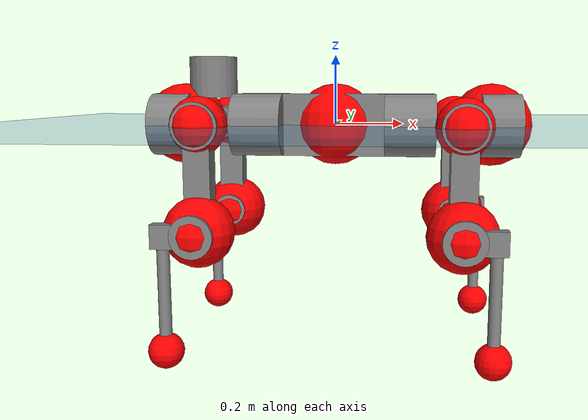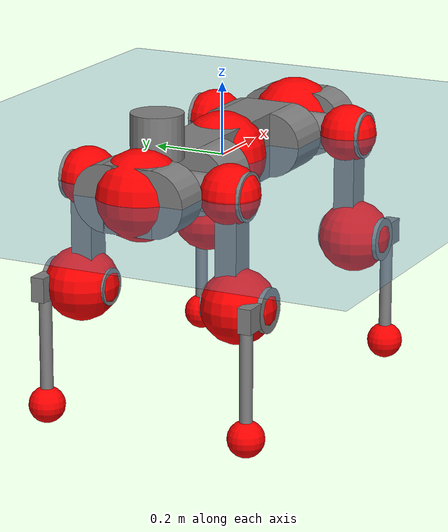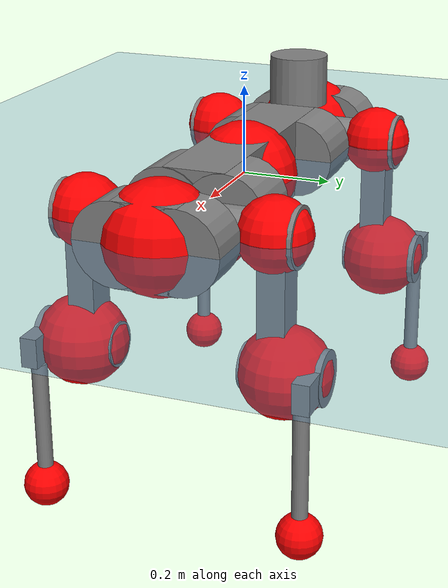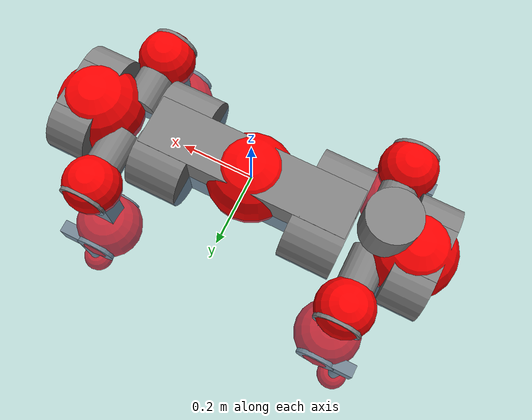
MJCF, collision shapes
<mujoco model="anymal_c">
  <compiler angle="radian" assetdir="assets" balanceinertia="true" inertiafromgeom="false"/>

  <option timestep="0.005" density="1.2" viscosity="2e-05"/>

  <size nkey="1"/>

  <visual>
    <quality shadowsize="8192"/>
    <map shadowclip="0.5"/>
  </visual>

  <default>
    <default class="/">
      <material specular="0" shininess="0.25"/>
      <geom contype="0" conaffinity="0" group="1" solref="-1000 -80"/>
      <site size="0.01 0.005 0.005" group="5"/>
      <general forcelimited="true" forcerange="-80 80" biastype="affine" gainprm="80" biasprm="0 -80 -2"/>
      <default class="anymal_c">
        <joint armature="0.01" damping="0.01" frictionloss="0.1"/>
        <default class="visual">
          <geom type="mesh" group="2"/>
          <default class="visual_zflip"/>
        </default>
        <default class="collision">
          <geom type="cylinder" group="3"/>
          <default class="foot">
            <geom size="0.03 0 0" type="sphere" condim="6" priority="1" friction="0.8 0.02 0.01" solimp="0.015 1 0.03"/>
          </default>
        </default>
      </default>
      <default class="reward_collision_sphere">
        <geom group="5" rgba="1 0 0 1"/>
      </default>
    </default>
  </default>

  <asset>
    <texture type="skybox" colorspace="auto" name="//unnamed_texture_0" builtin="gradient" rgb1="0.95 0.95 0.95" rgb2="0.95 0.95 0.95" width="100" height="600"/>
    <texture type="2d" colorspace="auto" name="texplane" builtin="checker" rgb1="0.345 0.575 0.748" rgb2="0.345 0.575 0.748" markrgb="1 1 1" width="512" height="512"/>
    <texture type="2d" colorspace="linear" name="base" file="base.png"/>
    <texture type="2d" colorspace="linear" name="top_shell" file="top_shell.png"/>
    <texture type="2d" colorspace="linear" name="bottom_shell" file="bottom_shell.png"/>
    <texture type="2d" colorspace="linear" name="remote" file="remote.png"/>
    <texture type="2d" colorspace="linear" name="hatch" file="hatch.png"/>
    <texture type="2d" colorspace="linear" name="handle" file="handle.png"/>
    <texture type="2d" colorspace="linear" name="face" file="face.png"/>
    <texture type="2d" colorspace="linear" name="battery" file="battery.png"/>
    <texture type="2d" colorspace="linear" name="lidar_cage" file="lidar_cage.png"/>
    <texture type="2d" colorspace="linear" name="depth_camera" file="depth_camera.png"/>
    <texture type="2d" colorspace="linear" name="wide_angle_camera" file="wide_angle_camera.png"/>
    <texture type="2d" colorspace="linear" name="lidar" file="lidar.png"/>
    <texture type="2d" colorspace="linear" name="drive" file="drive.png"/>
    <texture type="2d" colorspace="linear" name="hip_l" file="hip_l.png"/>
    <texture type="2d" colorspace="linear" name="shank_l" file="shank_l.png"/>
    <texture type="2d" colorspace="linear" name="foot" file="foot.png"/>
    <texture type="2d" colorspace="linear" name="thigh" file="thigh.png"/>
    <texture type="2d" colorspace="linear" name="shank_r" file="shank_r.png"/>
    <texture type="2d" colorspace="linear" name="hip_r" file="hip_r.png"/>
    <material name="MatPlane" class="/" texture="texplane" texuniform="true" texrepeat="2 2" specular="0.9" shininess="0.5"/>
    <material name="black_plastic" class="/" rgba="0.007 0.007 0.007 1"/>
    <material name="green" class="/" rgba="0.052 0.178 0.033 1"/>
    <material name="red" class="/" rgba="0.178 0.006 0.005 1"/>
    <material name="yellow" class="/" rgba="0.178 0.119 0.006 1"/>
    <material name="lwl" class="/" rgba="0.8 0.8 0.8 1"/>
    <material name="base" class="/" texture="base"/>
    <material name="top_shell" class="/" texture="top_shell"/>
    <material name="bottom_shell" class="/" texture="bottom_shell"/>
    <material name="hip_l" class="/" texture="hip_l"/>
    <material name="thigh" class="/" texture="thigh"/>
    <material name="shank_l" class="/" texture="shank_l"/>
    <material name="foot" class="/" texture="foot"/>
    <material name="hip_r" class="/" texture="hip_r"/>
    <material name="shank" class="/" texture="shank_r"/>
    <material name="hatch" class="/" texture="hatch"/>
    <material name="remote" class="/" texture="remote"/>
    <material name="handle" class="/" texture="handle"/>
    <material name="face" class="/" texture="face"/>
    <material name="depth_camera" class="/" texture="depth_camera"/>
    <material name="wide_angle_camera" class="/" texture="wide_angle_camera"/>
    <material name="battery" class="/" texture="battery"/>
    <material name="lidar_cage" class="/" texture="lidar_cage"/>
    <material name="lidar" class="/" texture="lidar"/>
    <material name="drive" class="/" texture="drive"/>
    <mesh name="base_0" class="/" file="base_0.obj"/>
    <mesh name="base_1" class="/" file="base_1.obj"/>
    <mesh name="base_2" class="/" file="base_2.obj"/>
    <mesh name="base_3" class="/" file="base_3.obj"/>
    <mesh name="base_4" class="/" file="base_4.obj"/>
    <mesh name="base_5" class="/" file="base_5.obj"/>
    <mesh name="top_shell" class="/" file="top_shell.obj"/>
    <mesh name="bottom_shell" class="/" file="bottom_shell.obj"/>
    <mesh name="remote" class="/" file="remote.obj"/>
    <mesh name="handle" class="/" file="handle.obj"/>
    <mesh name="face" class="/" file="face.obj"/>
    <mesh name="wide_angle_camera" class="/" file="wide_angle_camera.obj"/>
    <mesh name="depth_camera" class="/" file="depth_camera.obj"/>
    <mesh name="battery" class="/" file="battery.obj"/>
    <mesh name="lidar_cage" class="/" file="lidar_cage.obj"/>
    <mesh name="lidar" class="/" file="lidar.obj"/>
    <mesh name="drive" class="/" file="drive.obj"/>
    <mesh name="hip_l" class="/" file="hip_l.obj"/>
    <mesh name="thigh" class="/" file="thigh.obj"/>
    <mesh name="shank_l" class="/" file="shank_l.obj"/>
    <mesh name="foot" class="/" file="foot.obj"/>
    <mesh name="hip_r" class="/" file="hip_r.obj"/>
    <mesh name="hatch" class="/" file="hatch.obj"/>
    <mesh name="shank_r" class="/" file="shank_r.obj"/>
  </asset>

  <worldbody>
    <geom name="floor" class="/" size="100 100 0.125" type="plane" group="0" material="MatPlane"/>
    <light name="toplight_shadow" class="/" pos="0 0 5" dir="0.0990148 0.0990148 -0.990148" type="directional" ambient="0.04 0.04 0.04" diffuse="0.55 0.55 0.55" specular="0.12 0.12 0.12"/>
    <light name="toplight_fill" class="/" pos="0 0 5" dir="0.0990148 0.0990148 -0.990148" type="directional" castshadow="false" ambient="0.04 0.04 0.04" diffuse="0.3 0.3 0.3" specular="0.08 0.08 0.08"/>
    <body name="trunk" childclass="anymal_c" pos="0.000521855 0.000150692 -0.00190533" quat="1 0.00020572 0.000707533 -0.000278707">
      <inertial pos="0.00254903 0.000577622 0.0526158" quat="0.497934 0.499119 0.496839 0.506057" mass="19.782" diaginertia="0.711872 0.519864 0.263384"/>
      <joint name="//unnamed_joint_0" type="free" armature="0" damping="0" frictionloss="0"/>
      <geom name="//unnamed_geom_1" class="visual" material="green" mesh="base_0"/>
      <geom name="//unnamed_geom_2" class="visual" material="yellow" mesh="base_1"/>
      <geom name="//unnamed_geom_3" class="visual" material="red" mesh="base_2"/>
      <geom name="//unnamed_geom_4" class="visual" material="black_plastic" mesh="base_3"/>
      <geom name="//unnamed_geom_5" class="visual" material="lwl" mesh="base_4"/>
      <geom name="//unnamed_geom_6" class="visual" material="base" mesh="base_5"/>
      <geom name="trunk_1" class="collision" size="0.291162 0.0702805 0.0903607" type="box"/>
      <geom name="trunk_2" class="collision" size="0.0903607 0.0727905" pos="0.221415 0.0671702 0" quat="0.707107 0 0.707107 0"/>
      <geom name="trunk_3" class="collision" size="0.0903607 0.0727905" pos="-0.221415 0.0671702 0" quat="0.707107 0 0.707107 0"/>
      <geom name="trunk_4" class="collision" size="0.0903607 0.0727905" pos="0.221415 -0.0671702 0" quat="0.707107 0 0.707107 0"/>
      <geom name="trunk_5" class="collision" size="0.0903607 0.0727905" pos="-0.221415 -0.0671702 0" quat="0.707107 0 0.707107 0"/>
      <geom name="//unnamed_geom_12" class="visual" material="top_shell" mesh="top_shell"/>
      <geom name="//unnamed_geom_13" class="visual" material="bottom_shell" mesh="bottom_shell"/>
      <geom name="//unnamed_geom_14" class="visual" material="remote" mesh="remote"/>
      <geom name="//unnamed_geom_15" class="visual" material="handle" mesh="handle"/>
      <geom name="//unnamed_geom_16" class="visual" pos="0.42196 0 0" quat="1 0 0 0" material="face" mesh="face"/>
      <geom name="trunk_6" class="collision" size="0.0552204 0.0702805 0.0903607" pos="0.47795 0 0" type="box"/>
      <geom name="//unnamed_geom_18" class="collision" size="0.0903607 0.0552204" pos="0.47795 0.0671702 0" quat="0.707107 0 0.707107 0"/>
      <geom name="//unnamed_geom_19" class="collision" size="0.0903607 0.0552204" pos="0.47795 -0.0671702 0" quat="0.707107 0 0.707107 0"/>
      <geom name="//unnamed_geom_20" class="visual" pos="0.469959 0 -0.030331" quat="0.965926 0 0.258819 0" material="depth_camera" mesh="depth_camera"/>
      <geom name="//unnamed_geom_21" class="visual" pos="0.522233 0 0.0154857" material="wide_angle_camera" mesh="wide_angle_camera"/>
      <geom name="//unnamed_geom_22" class="visual_zflip" pos="-0.42196 0 0" quat="0 0 0 1" material="face" mesh="face"/>
      <geom name="trunk_7" class="collision" size="0.0552204 0.0702805 0.0903607" pos="-0.47795 0 0" quat="0 0 0 1" type="box"/>
      <geom name="//unnamed_geom_24" class="collision" size="0.0903607 0.0552204" pos="-0.47795 -0.0671702 0" quat="0 -0.707107 0 0.707107"/>
      <geom name="//unnamed_geom_25" class="collision" size="0.0903607 0.0552204" pos="-0.47795 0.0671702 0" quat="0 -0.707107 0 0.707107"/>
      <geom name="//unnamed_geom_26" class="visual" pos="-0.469959 0 -0.030331" quat="0 -0.258819 0 0.965926" material="depth_camera" mesh="depth_camera"/>
      <geom name="//unnamed_geom_27" class="visual_zflip" pos="-0.522233 0 0.0154857" quat="0 0 0 1" material="wide_angle_camera" mesh="wide_angle_camera"/>
      <geom name="//unnamed_geom_28" class="visual" material="battery" mesh="battery"/>
      <geom name="//unnamed_geom_29" class="visual" pos="0 0.0726031 0.0299257" quat="0.683013 -0.183013 0.183013 0.683013" material="depth_camera" mesh="depth_camera"/>
      <geom name="//unnamed_geom_30" class="visual" pos="0 -0.0726031 0.0299257" quat="0.683013 0.183013 0.183013 -0.683013" material="depth_camera" mesh="depth_camera"/>
      <geom name="//unnamed_geom_31" class="visual" pos="-0.370551 0 0.0760321" quat="1 0 0 0" material="lidar_cage" mesh="lidar_cage"/>
      <geom name="trunk_8" class="collision" size="0.0702805 0.0602404" pos="-0.370551 0 0.138099"/>
      <geom name="//unnamed_geom_33" class="visual" pos="-0.370551 -2.29532e-05 0.147099" quat="0.707107 0 0 -0.707107" material="lidar" mesh="lidar"/>
      <geom name="//unnamed_geom_34" class="visual" pos="0.305298 0.0998223 -1.29162e-09" quat="0.258819 0.965926 0 0" material="drive" mesh="drive"/>
      <geom name="//unnamed_geom_35" class="visual" pos="0.305298 -0.0998223 1.29162e-09" quat="0.258819 -0.965926 0 0" material="drive" mesh="drive"/>
      <geom name="//unnamed_geom_36" class="visual" pos="-0.305298 0.0998223 1.29162e-09" quat="0 0 0.965926 -0.258819" material="drive" mesh="drive"/>
      <geom name="//unnamed_geom_37" class="visual" pos="-0.305298 -0.0998223 -1.29162e-09" quat="0 0 -0.965926 -0.258819" material="drive" mesh="drive"/>
      <geom name="//unnamed_geom_38" class="visual" pos="0.118088 0 0.0755149" quat="1 0 0 0" material="hatch" mesh="hatch"/>
      <geom name="//unnamed_geom_39" class="reward_collision_sphere" size="0.120481"/>
      <geom name="//unnamed_geom_40" class="reward_collision_sphere" size="0.120481" pos="0.458099 0 0"/>
      <geom name="//unnamed_geom_41" class="reward_collision_sphere" size="0.120481" pos="-0.458099 0 0"/>
      <site name="imu" pos="0.253816 0.00517758 0.0451325" size="0.0100401"/>
      <camera name="track" pos="0 -1.91915 0" quat="0.707107 0.707107 0 0" mode="trackcom"/>
      <camera name="ego_camera" pos="0.458099 0 -0.041378" quat="-0.5 -0.5 0.5 0.5"/>
      <body name="LF_HIP" pos="0.30552 0.0991407 0.000549192" quat="0.258905 0.965903 7.895e-05 2.42461e-05">
        <inertial pos="0.0563635 -0.0145328 -0.0102791" quat="-0.12699 0.714567 -0.140294 0.673488" mass="2.84048" diaginertia="0.00647425 0.00406503 0.0039321"/>
        <joint name="LF_HAA" pos="0 0 0" axis="0.999997 -0.00120246 -0.00198475" range="-0.715199 0.473682" armature="0.0100174" damping="0.00901591" frictionloss="0.0964478"/>
        <geom name="//unnamed_geom_42" class="visual" pos="0 -7.59804e-05 1.24797e-05" quat="0.258819 -0.965926 0 0" material="hip_l" mesh="hip_l"/>
        <geom name="//unnamed_geom_43" class="visual" pos="0.0609781 -0.0731453 -0.0427843" quat="0.183013 -0.683013 0.683013 0.183013" material="drive" mesh="drive"/>
        <geom name="//unnamed_geom_44" class="collision" size="0.0502004 0.0702805" pos="0.0609781 -0.0114763 -0.00714288" quat="-0.353553 -0.612372 0.612372 -0.353553"/>
        <body name="LF_THIGH" pos="0.0607563 -0.0704495 -0.04258" quat="0.18309 -0.682961 0.683028 0.183068">
          <inertial pos="0.0314798 -0.000124671 -0.25409" quat="0.992925 -0.0060411 -0.0795772 0.0879228" mass="3.05399" diaginertia="0.032591 0.0239526 0.00484126"/>
          <joint name="LF_HFE" pos="0 0 0" axis="1 9.21976e-05 -0.000782247" stiffness="0.00419756" range="-3.13101 3.14006" armature="0.00994756" damping="0.00876535" frictionloss="0.100687"/>
          <geom name="//unnamed_geom_45" class="visual" pos="0.00116241 1.83168e-06 0" quat="0.707107 0 0 -0.707107" material="thigh" mesh="thigh"/>
          <geom name="//unnamed_geom_46" class="collision" size="0.0652605 0.0401603" pos="0.0407199 0 0" quat="0.5 0.5 -0.5 -0.5"/>
          <geom name="//unnamed_geom_47" class="collision" size="0.0376503 0.0301202 0.14188" pos="0.0305399 0 -0.146182" quat="0.707107 0 0 -0.707107" type="box"/>
          <geom name="//unnamed_geom_48" class="visual" pos="0.102105 0 -0.294818" quat="1 0 0 0" material="drive" mesh="drive"/>
          <geom name="//unnamed_geom_49" class="collision" size="0.0502004 0.0702805" pos="0.0308453 0 -0.294818" quat="0.707107 0 0.707107 0"/>
          <geom name="//unnamed_geom_50" class="reward_collision_sphere" size="0.0803206" pos="0.0254499 0 0"/>
          <body name="LF_SHANK" pos="0.101582 -0.0008294 -0.295059" quat="1 -3.3251e-05 4.26194e-06 -6.93713e-06">
            <inertial pos="0.00334938 -0.0604278 -0.0835785" quat="0.992935 -0.115886 -0.00100683 -0.0254894" mass="0.59652" diaginertia="0.0109314 0.00758151 0.00132708"/>
            <joint name="LF_KFE" pos="0 0 0" axis="0.999998 0.00153075 0.00111519" range="-3.18291 3.12732" armature="0.0101037" damping="0.00971323" frictionloss="0.110478"/>
            <geom name="//unnamed_geom_51" class="visual" pos="0.000379036 0.00202104 0" quat="0.707107 0 0 -0.707107" material="shank_l" mesh="shank_l"/>
            <geom name="LF_kfe_act" class="collision" size="0.0602404 0.0200801" pos="0.02036 0 0" quat="0.5 0.5 -0.5 -0.5"/>
            <geom name="//unnamed_geom_53" class="collision" size="0.0577294 0.0338852 0.0190761" pos="0.02036 -0.0551745 0" quat="0.5 0.5 -0.5 -0.5" type="box"/>
            <geom name="//unnamed_geom_54" class="visual" pos="0.0132848 -0.0837432 -0.349613" quat="0.382683 0 0 -0.92388" material="foot" mesh="foot"/>
            <geom name="LF_calf" class="collision" size="0.0175701 0.141818" pos="0.0132849 -0.0843945 -0.174807" quat="0.707107 0 0 -0.707107"/>
            <geom name="LF_foot" class="foot" size="0.0298824" pos="0.0132849 -0.0843945 -0.326338" quat="0.707107 0 0 -0.707107"/>
            <geom name="//unnamed_geom_57" class="reward_collision_sphere" size="0.100401" pos="-0.0508999 0 0"/>
            <geom name="//unnamed_geom_58" class="reward_collision_sphere" size="0.0502004" pos="0.0132849 -0.0843945 -0.326338"/>
            <site name="LF_foot" class="foot" pos="0.0132849 -0.0843945 -0.326338" quat="0.707107 0 0 -0.707107" size="0.0100401"/>
          </body>
        </body>
      </body>
      <body name="RF_HIP" pos="0.306579 -0.100776 0.000198237" quat="0.258645 -0.965972 -0.000826464 0.000433714">
        <inertial pos="0.0588078 0.0150623 -0.00878137" quat="0.126107 0.678251 0.125853 0.712905" mass="2.91084" diaginertia="0.00648503 0.00405791 0.00395806"/>
        <joint name="RF_HAA" pos="0 0 0" axis="0.999987 -0.00379355 0.00329558" range="-0.530837 0.737336" armature="0.00984665" damping="0.0135461" frictionloss="0.0991208"/>
        <geom name="//unnamed_geom_59" class="visual" pos="0 7.59797e-05 1.24797e-05" quat="0.258819 0.965926 0 0" material="hip_r" mesh="hip_r"/>
        <geom name="//unnamed_geom_60" class="visual" pos="0.0609781 0.0731453 -0.0427843" quat="0.183013 0.683013 0.683013 -0.183013" material="drive" mesh="drive"/>
        <geom name="//unnamed_geom_61" class="collision" size="0.0502004 0.0702805" pos="0.0609781 0.0114763 -0.00714288" quat="-0.353553 0.612372 0.612372 0.353553"/>
        <body name="RF_THIGH" pos="0.0608944 0.0699044 -0.0429864" quat="0.182936 0.683287 0.682854 -0.182656">
          <inertial pos="0.0323894 -0.00015872 -0.253437" quat="0.992876 -0.00420199 -0.0780683 0.0899211" mass="3.13175" diaginertia="0.0330739 0.0241415 0.00490466"/>
          <joint name="RF_HFE" pos="0 0 0" axis="1 0.000576182 0.000316191" stiffness="0.00648061" range="-3.14408 3.15135" armature="0.0105719" damping="0" frictionloss="0.0973371"/>
          <geom name="//unnamed_geom_62" class="visual" pos="0.00116241 1.83168e-06 0" quat="0.707107 0 0 -0.707107" material="thigh" mesh="thigh"/>
          <geom name="//unnamed_geom_63" class="collision" size="0.0652605 0.0401603" pos="0.0407199 0 0" quat="0.5 0.5 0.5 0.5"/>
          <geom name="//unnamed_geom_64" class="collision" size="0.0376503 0.0301202 0.14188" pos="0.0305399 0 -0.146182" quat="0.707107 0 0 0.707107" type="box"/>
          <geom name="//unnamed_geom_65" class="visual" pos="0.102105 0 -0.294818" quat="1 0 0 0" material="drive" mesh="drive"/>
          <geom name="//unnamed_geom_66" class="collision" size="0.0502004 0.0702805" pos="0.0308453 0 -0.294818" quat="0.707107 0 0.707107 0"/>
          <geom name="//unnamed_geom_67" class="reward_collision_sphere" size="0.0803206" pos="0.0254499 0 0"/>
          <body name="RF_SHANK" pos="0.100032 7.90663e-05 -0.294923" quat="1 -1.12306e-05 1.09407e-06 1.11236e-05">
            <inertial pos="0.00598773 0.0573857 -0.0825842" quat="0.993929 0.106989 -0.00637584 0.0248471" mass="0.581784" diaginertia="0.0108767 0.00748544 0.00130629"/>
            <joint name="RF_KFE" pos="0 0 0" axis="0.999994 0.00080588 -0.0035119" stiffness="0.00183027" range="-3.13966 3.12683" armature="0.00994695" damping="0.00406335" frictionloss="0.104893"/>
            <geom name="//unnamed_geom_68" class="visual" pos="0.000379034 -0.00202103 0" quat="0.707107 0 0 0.707107" material="shank" mesh="shank_r"/>
            <geom name="RF_kfe_act" class="collision" size="0.0602404 0.0200801" pos="0.02036 0 0" quat="0.5 0.5 0.5 0.5"/>
            <geom name="//unnamed_geom_70" class="collision" size="0.0577294 0.0338852 0.0190761" pos="0.02036 0.0551745 0" quat="0.5 0.5 0.5 0.5" type="box"/>
            <geom name="//unnamed_geom_71" class="visual" pos="0.013285 0.0837432 -0.349613" quat="0.382683 0 0 0.92388" material="foot" mesh="foot"/>
            <geom name="RF_calf" class="collision" size="0.0175701 0.141818" pos="0.0132849 0.0843945 -0.174807" quat="0.707107 0 0 0.707107"/>
            <geom name="RF_foot" class="foot" size="0.0291353" pos="0.0132849 0.0843945 -0.326338" quat="0.707107 0 0 0.707107"/>
            <geom name="//unnamed_geom_74" class="reward_collision_sphere" size="0.100401" pos="-0.0508999 0 0"/>
            <geom name="//unnamed_geom_75" class="reward_collision_sphere" size="0.0502004" pos="0.0132849 0.0843945 -0.326338"/>
            <site name="RF_foot" class="foot" pos="0.0132849 0.0843945 -0.326338" quat="0.707107 0 0 0.707107" size="0.0100401"/>
          </body>
        </body>
      </body>
      <body name="LH_HIP" pos="-0.305072 0.0999678 0.00104502" quat="9.06294e-05 4.67131e-05 0.966052 -0.258347">
        <inertial pos="0.0585385 0.0129814 -0.0106204" quat="0.131274 0.680051 0.125167 0.710374" mass="2.81553" diaginertia="0.00652571 0.00398162 0.00390241"/>
        <joint name="LH_HAA" pos="0 0 0" axis="0.999969 -0.00293317 0.007252" range="-0.518866 0.753597" armature="0.0105533" damping="0.0103221" frictionloss="0.099767"/>
        <geom name="//unnamed_geom_76" class="visual" pos="0 7.59797e-05 1.24797e-05" quat="-0.258819 -0.965926 0 0" material="hip_r" mesh="hip_r"/>
        <geom name="//unnamed_geom_77" class="visual" pos="0.0609781 0.0731453 -0.0427843" quat="0.183013 0.683013 0.683013 -0.183013" material="drive" mesh="drive"/>
        <geom name="//unnamed_geom_78" class="collision" size="0.0502004 0.0702805" pos="0.0609781 0.0114763 -0.00714288" quat="-0.353553 0.612372 0.612372 0.353553"/>
        <body name="LH_THIGH" pos="0.0607806 0.0686639 -0.0415394" quat="0.182797 0.682851 0.6832 -0.183136">
          <inertial pos="0.0335433 -0.000409934 -0.255972" quat="0.992808 -0.00518367 -0.0805208 0.0884445" mass="3.19173" diaginertia="0.0346496 0.0251247 0.00509063"/>
          <joint name="LH_HFE" pos="0 0 0" axis="0.999948 0.00270856 -0.00985691" range="-3.13827 3.1391" armature="0.0100393" damping="0" frictionloss="0.0955523"/>
          <geom name="//unnamed_geom_79" class="visual" pos="0.00116241 1.83168e-06 0" quat="0.707107 0 0 -0.707107" material="thigh" mesh="thigh"/>
          <geom name="//unnamed_geom_80" class="collision" size="0.0652605 0.0401603" pos="0.0407199 0 0" quat="0.5 0.5 -0.5 -0.5"/>
          <geom name="//unnamed_geom_81" class="collision" size="0.0376503 0.0301202 0.14188" pos="0.0305399 0 -0.146182" quat="0.707107 0 0 -0.707107" type="box"/>
          <geom name="//unnamed_geom_82" class="visual" pos="0.102105 0 -0.294818" quat="1 0 0 0" material="drive" mesh="drive"/>
          <geom name="//unnamed_geom_83" class="collision" size="0.0502004 0.0702805" pos="0.0308453 0 -0.294818" quat="0.707107 0 0.707107 0"/>
          <geom name="//unnamed_geom_84" class="reward_collision_sphere" size="0.0803206" pos="0.0254499 0 0"/>
          <body name="LH_SHANK" pos="0.102386 5.08868e-05 -0.296286" quat="1 -0.000315674 -0.000202903 0.000305629">
            <inertial pos="0.00374542 0.0584941 -0.0854458" quat="0.992468 0.11894 0.00414027 0.029031" mass="0.594813" diaginertia="0.0110822 0.007582 0.0013072"/>
            <joint name="LH_KFE" pos="0 0 0" axis="1 -0.00061734 0.000104208" range="-3.13595 3.09704" armature="0.0107524" damping="0" frictionloss="0.0995855"/>
            <geom name="//unnamed_geom_85" class="visual" pos="0.000379034 -0.00202103 0" quat="-0.707107 0 0 -0.707107" material="shank" mesh="shank_r"/>
            <geom name="LH_kfe_act" class="collision" size="0.0602404 0.0200801" pos="0.02036 0 0" quat="0.5 0.5 -0.5 -0.5"/>
            <geom name="//unnamed_geom_87" class="collision" size="0.0577294 0.0338852 0.0190761" pos="0.02036 0.0551745 0" quat="0.5 0.5 -0.5 -0.5" type="box"/>
            <geom name="//unnamed_geom_88" class="visual" pos="0.013285 0.0837432 -0.349613" quat="-0.382683 0 0 -0.92388" material="foot" mesh="foot"/>
            <geom name="LH_calf" class="collision" size="0.0175701 0.141818" pos="0.0132849 0.0843945 -0.174807" quat="0.707107 0 0 -0.707107"/>
            <geom name="LH_foot" class="foot" size="0.0303251" pos="0.0132849 0.0843945 -0.326338" quat="0.707107 0 0 -0.707107"/>
            <geom name="//unnamed_geom_91" class="reward_collision_sphere" size="0.100401" pos="-0.0508999 0 0"/>
            <geom name="//unnamed_geom_92" class="reward_collision_sphere" size="0.0502004" pos="0.0132849 0.0843945 -0.326338"/>
            <site name="LH_foot" class="foot" pos="0.0132849 0.0843945 -0.326338" quat="0.707107 0 0 -0.707107" size="0.0100401"/>
          </body>
        </body>
      </body>
      <body name="RH_HIP" pos="-0.303091 -0.0996353 0.00144565" quat="4.21072e-05 -0.000111889 -0.965942 -0.25876">
        <inertial pos="0.0569636 -0.014302 -0.00867715" quat="-0.132372 0.70579 -0.138831 0.681956" mass="2.80207" diaginertia="0.00669362 0.00407997 0.00395212"/>
        <joint name="RH_HAA" pos="0 0 0" axis="0.999928 0.00680942 -0.00992266" range="-0.704264 0.493798" armature="0.00997898" damping="0.0105472" frictionloss="0.111091"/>
        <geom name="//unnamed_geom_93" class="visual" pos="0 -7.59804e-05 1.24797e-05" quat="-0.258819 0.965926 0 0" material="hip_l" mesh="hip_l"/>
        <geom name="//unnamed_geom_94" class="visual" pos="0.0609781 -0.0731453 -0.0427843" quat="-0.183013 0.683013 -0.683013 -0.183013" material="drive" mesh="drive"/>
        <geom name="//unnamed_geom_95" class="collision" size="0.0502004 0.0702805" pos="0.0609781 -0.0114763 -0.00714288" quat="0.353553 0.612372 -0.612372 0.353553"/>
        <body name="RH_THIGH" pos="0.0603844 -0.0696363 -0.0433767" quat="-0.182966 0.683018 -0.683052 -0.182893">
          <inertial pos="0.0305516 0.000748267 -0.255191" quat="0.99312 -0.00497453 -0.0803898 0.0850052" mass="3.05647" diaginertia="0.0338378 0.0245937 0.00498781"/>
          <joint name="RH_HFE" pos="0 0 0" axis="0.999992 0.000419279 0.00407824" range="-3.14711 3.13512" armature="0.0101214" damping="0.0138637" frictionloss="0.102931"/>
          <geom name="//unnamed_geom_96" class="visual" pos="0.00116241 1.83168e-06 0" quat="0.707107 0 0 -0.707107" material="thigh" mesh="thigh"/>
          <geom name="//unnamed_geom_97" class="collision" size="0.0652605 0.0401603" pos="0.0407199 0 0" quat="0.5 0.5 0.5 0.5"/>
          <geom name="//unnamed_geom_98" class="collision" size="0.0376503 0.0301202 0.14188" pos="0.0305399 0 -0.146182" quat="0.707107 0 0 0.707107" type="box"/>
          <geom name="//unnamed_geom_99" class="visual" pos="0.102105 0 -0.294818" quat="1 0 0 0" material="drive" mesh="drive"/>
          <geom name="//unnamed_geom_100" class="collision" size="0.0502004 0.0702805" pos="0.0308453 0 -0.294818" quat="0.707107 0 0.707107 0"/>
          <geom name="//unnamed_geom_101" class="reward_collision_sphere" size="0.0803206" pos="0.0254499 0 0"/>
          <body name="RH_SHANK" pos="0.100017 0.000756575 -0.295374" quat="0.999999 0.000529505 -0.000893892 -0.00012781">
            <inertial pos="0.00474812 -0.058672 -0.0835497" quat="0.993088 -0.113596 0.00485679 -0.0291365" mass="0.591516" diaginertia="0.0110015 0.00739926 0.00129184"/>
            <joint name="RH_KFE" pos="0 0 0" axis="0.999907 -0.0136556 0.000310774" range="-3.09907 3.14265" armature="0.0100286" damping="0" frictionloss="0.103261"/>
            <geom name="//unnamed_geom_102" class="visual" pos="0.000379036 0.00202104 0" quat="0.707107 0 0 -0.707107" material="shank_l" mesh="shank_l"/>
            <geom name="RH_kfe_act" class="collision" size="0.0602404 0.0200801" pos="0.02036 0 0" quat="0.5 0.5 0.5 0.5"/>
            <geom name="//unnamed_geom_104" class="collision" size="0.0577294 0.0338852 0.0190761" pos="0.02036 -0.0551745 0" quat="0.5 0.5 0.5 0.5" type="box"/>
            <geom name="//unnamed_geom_105" class="visual" pos="0.0132848 -0.0837432 -0.349613" quat="0.382683 0 0 -0.92388" material="foot" mesh="foot"/>
            <geom name="RH_calf" class="collision" size="0.0175701 0.141818" pos="0.0132849 -0.0843945 -0.174807" quat="0.707107 0 0 0.707107"/>
            <geom name="RH_foot" class="foot" size="0.0306073" pos="0.0132849 -0.0843945 -0.326338" quat="0.707107 0 0 0.707107"/>
            <geom name="//unnamed_geom_108" class="reward_collision_sphere" size="0.100401" pos="-0.0508999 0 0"/>
            <geom name="//unnamed_geom_109" class="reward_collision_sphere" size="0.0502004" pos="0.0132849 -0.0843945 -0.326338"/>
            <site name="RH_foot" class="foot" pos="0.0132849 -0.0843945 -0.326338" quat="0.707107 0 0 0.707107" size="0.0100401"/>
          </body>
        </body>
      </body>
    </body>
  </worldbody>

  <contact>
    <pair class="/" geom1="floor" geom2="LF_foot" name="//unnamed_contact_0"/>
    <pair class="/" geom1="floor" geom2="RF_foot" name="//unnamed_contact_1"/>
    <pair class="/" geom1="floor" geom2="LH_foot" name="//unnamed_contact_2"/>
    <pair class="/" geom1="floor" geom2="RH_foot" name="//unnamed_contact_3"/>
  </contact>

  <actuator>
    <general name="LF_HAA" class="/" joint="LF_HAA" forcerange="-81.1117 81.1117" gainprm="81.7964" biasprm="0 -81.7964 -1.97726"/>
    <general name="LF_HFE" class="/" joint="LF_HFE" forcerange="-80.1312 80.1312" gainprm="81.7964" biasprm="0 -81.7964 -1.97726"/>
    <general name="LF_KFE" class="/" joint="LF_KFE" forcerange="-79.0382 79.0382" gainprm="81.7964" biasprm="0 -81.7964 -1.97726"/>
    <general name="RF_HAA" class="/" joint="RF_HAA" forcerange="-79.6635 79.6635" gainprm="81.7964" biasprm="0 -81.7964 -1.97726"/>
    <general name="RF_HFE" class="/" joint="RF_HFE" forcerange="-79.758 79.758" gainprm="81.7964" biasprm="0 -81.7964 -1.97726"/>
    <general name="RF_KFE" class="/" joint="RF_KFE" forcerange="-80.9178 80.9178" gainprm="81.7964" biasprm="0 -81.7964 -1.97726"/>
    <general name="LH_HAA" class="/" joint="LH_HAA" forcerange="-81.3656 81.3656" gainprm="81.7964" biasprm="0 -81.7964 -1.97726"/>
    <general name="LH_HFE" class="/" joint="LH_HFE" forcerange="-75.3333 75.3333" gainprm="81.7964" biasprm="0 -81.7964 -1.97726"/>
    <general name="LH_KFE" class="/" joint="LH_KFE" forcerange="-85.6328 85.6328" gainprm="81.7964" biasprm="0 -81.7964 -1.97726"/>
    <general name="RH_HAA" class="/" joint="RH_HAA" forcerange="-80.7717 80.7717" gainprm="81.7964" biasprm="0 -81.7964 -1.97726"/>
    <general name="RH_HFE" class="/" joint="RH_HFE" forcerange="-83.1014 83.1014" gainprm="81.7964" biasprm="0 -81.7964 -1.97726"/>
    <general name="RH_KFE" class="/" joint="RH_KFE" forcerange="-78.9803 78.9803" gainprm="81.7964" biasprm="0 -81.7964 -1.97726"/>
  </actuator>

  <sensor>
    <gyro site="imu" name="imu_angular_velocity"/>
    <velocimeter site="imu" name="imu_linear_velocity"/>
    <framelinvel objtype="site" objname="LF_foot" name="LF_foot_global_linear_velocity"/>
    <framelinvel objtype="site" objname="RF_foot" name="RF_foot_global_linear_velocity"/>
    <framelinvel objtype="site" objname="LH_foot" name="LH_foot_global_linear_velocity"/>
    <framelinvel objtype="site" objname="RH_foot" name="RH_foot_global_linear_velocity"/>
  </sensor>

  <keyframe>
    <key name="home" qpos="0 0 0.55 1 0 0 0 0 0.4 -0.8 0 -0.4 0.8 0 -0.4 0.8 0 0.4 -0.8"/>
  </keyframe>
</mujoco>
